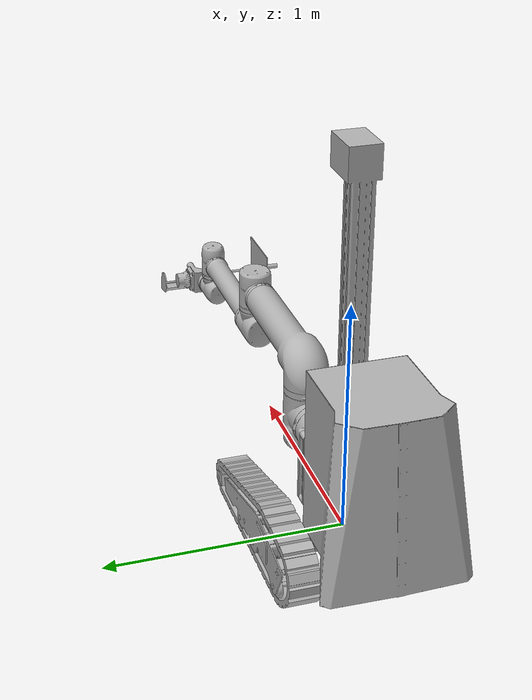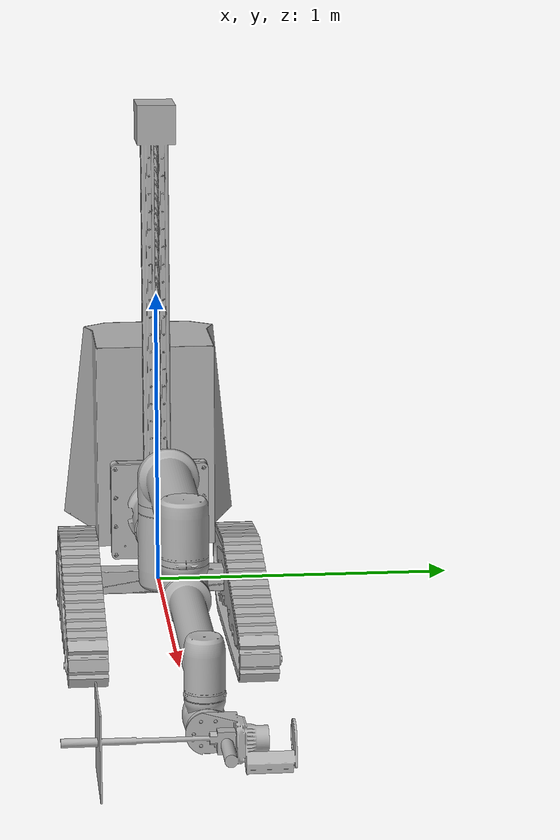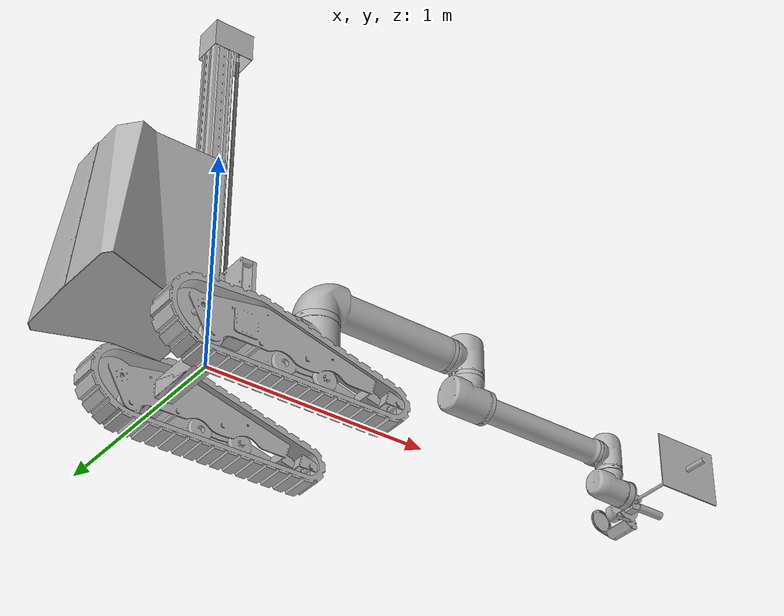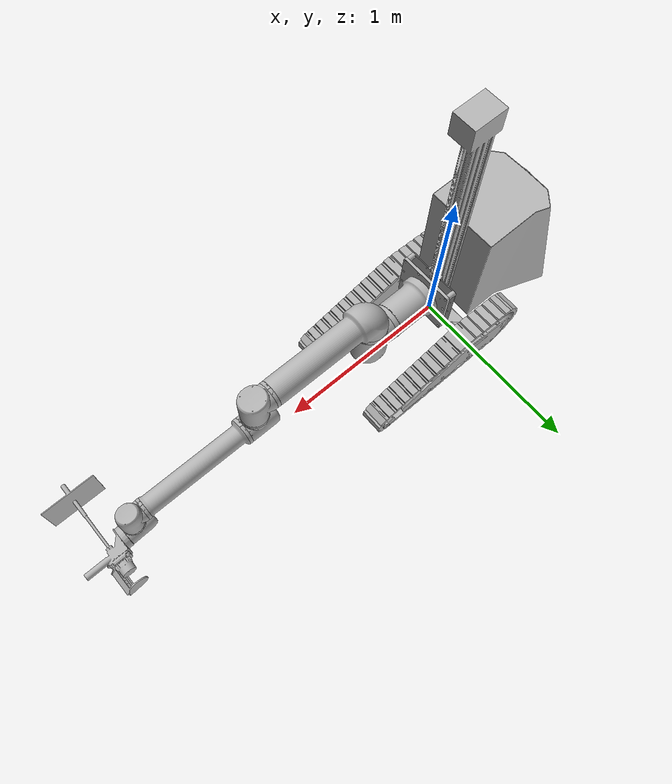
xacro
<?xml version="1.0"?>
<robot xmlns:xacro="http://www.ros.org/wiki/xacro" name="mobile_robco">
    <xacro:arg name="initial_positions_file" default="initial_positions.yaml" />

    <!-- Import mobile_robco urdf file -->
    <xacro:include filename="$(find mobile_robco_description)/urdf/mobile_robco.xacro" />

    <!-- Import control_xacro -->
    <xacro:include filename="mobile_robco.ros2_control.xacro" />

    <xacro:mobile_robco_ros2_control name="FakeSystem" initial_positions_file="$(arg initial_positions_file)"/>

</robot>

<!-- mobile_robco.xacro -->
<robot name="mobile_robco" xmlns:xacro="http://ros.org/wiki/xacro">

  <!-- Define Default Joint Limits -->
  <xacro:property name="default_lower" value="-4.71239"/>
  <xacro:property name="default_upper" value="4.71239"/>
  <xacro:property name="default_velocity" value="0.5"/>
  <xacro:property name="default_acceleration" value="0.05"/>

  <!-- Include Shared Xacro Files -->
  <xacro:include filename="$(find mobile_robco_description)/urdf/shared/materials.xacro" />
  <xacro:include filename="$(find mobile_robco_description)/urdf/shared/mobile_robco.trans" />
  <xacro:include filename="$(find mobile_robco_description)/urdf/shared/mobile_robco.gazebo" />

  <!-- Include Modular Components -->
  <xacro:include filename="$(find mobile_robco_description)/urdf/base/base.xacro" />
  <xacro:include filename="$(find mobile_robco_description)/urdf/arm/robco_xl.xacro" />
  <xacro:include filename="$(find mobile_robco_description)/urdf/end_effector/end_effector.xacro" />

  <!-- Include Plugins -->
  <xacro:include filename="$(find mobile_robco_description)/urdf/plugins/mobile_robco_track_plugin.gazebo" />
  <xacro:include filename="$(find mobile_robco_description)/urdf/plugins/mobile_robco.ros2_control.xacro" />

  <!-- Joint Connecting Basis and Arm -->
  <joint name="Rigid_19" type="fixed">
    <origin xyz="0.893568 -0.12648 0.409927" rpy="1.5708 0 0"/>
    <parent link="Komponente21_v1_1"/>
    <child link="BD193_customer_v1_1"/>
  </joint>

  <!-- Joint Connecting Arm and End Effector -->
  <joint name="robco_joint_5" type="revolute">
    <origin xyz="0.001757 0.060174 0.0748" rpy="0 0 0"/>
    <parent link="D116_customer_v1_2"/>
    <child link="lanze"/>
    <axis xyz="0 1 0"/>
    <limit lower="${default_lower}" upper="${default_upper}" effort="1000" velocity="${default_velocity}" acceleration="${default_acceleration}"/>
  </joint>

</robot>

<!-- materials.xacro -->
<robot name="mobile_robco" xmlns:xacro="http://www.ros.org/wiki/xacro" >

<material name="silver">
  <color rgba="0.700 0.700 0.700 1.000"/>
</material>

</robot>

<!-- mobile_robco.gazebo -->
<robot name="mobile_robco" xmlns:xacro="http://www.ros.org/wiki/xacro" >

<xacro:property name="body_color" value="Gazebo/Silver" />

<gazebo>
  <plugin filename="gz_ros2_control-system" name="gz_ros2_control::GazeboSimROS2ControlPlugin">
    <parameters>$(find mobile_robco_description)/config/controller_config.yaml</parameters>
  </plugin>
  <plugin filename="gz-sim-sensors-system" name="gz::sim::systems::Sensors">
    <render_engine>ogre2</render_engine>
  </plugin>
  <plugin name='rgl::RGLServerPluginManager' filename='RGLServerPluginManager'>
    <do_ignore_entities_in_lidar_link>true</do_ignore_entities_in_lidar_link>
  </plugin>
  <plugin filename="gz-sim-imu-system"
        name="gz::sim::systems::Imu">
  </plugin>
  <plugin filename="gz-sim-forcetorque-system" name="gz::sim::systems::ForceTorque">
  </plugin>
</gazebo>

<gazebo reference="base_link">
  <material>${body_color}</material>
  <mu1>0.2</mu1>
  <mu2>0.2</mu2>
  <self_collide>true</self_collide>
  <gravity>true</gravity>
</gazebo>

<gazebo reference="C193_v1_1">
  <material>${body_color}</material>
  <mu1>0.2</mu1>
  <mu2>0.2</mu2>
  <self_collide>true</self_collide>
</gazebo>

<gazebo reference="D193_customer_v1_1">
  <material>${body_color}</material>
  <mu1>0.2</mu1>
  <mu2>0.2</mu2>
  <self_collide>true</self_collide>
</gazebo>

<gazebo reference="C193_v1__1__1">
  <material>${body_color}</material>
  <mu1>0.2</mu1>
  <mu2>0.2</mu2>
  <self_collide>true</self_collide>
</gazebo>

<gazebo reference="L193_650_customer_v1_1">
  <material>${body_color}</material>
  <mu1>0.2</mu1>
  <mu2>0.2</mu2>
  <self_collide>true</self_collide>
</gazebo>

<gazebo reference="C148_v1__1__1">
  <material>${body_color}</material>
  <mu1>0.2</mu1>
  <mu2>0.2</mu2>
  <self_collide>true</self_collide>
</gazebo>

<gazebo reference="D148_customer_v3_1">
  <material>${body_color}</material>
  <mu1>0.2</mu1>
  <mu2>0.2</mu2>
  <self_collide>true</self_collide>
</gazebo>

<gazebo reference="C148_v1_1">
  <material>${body_color}</material>
  <mu1>0.2</mu1>
  <mu2>0.2</mu2>
  <self_collide>true</self_collide>
</gazebo>

<gazebo reference="D148_customer_v3__1__1">
  <material>${body_color}</material>
  <mu1>0.2</mu1>
  <mu2>0.2</mu2>
  <self_collide>true</self_collide>
</gazebo>

<gazebo reference="C148_v1__2__1">
  <material>${body_color}</material>
  <mu1>0.2</mu1>
  <mu2>0.2</mu2>
  <self_collide>true</self_collide>
</gazebo>

<gazebo reference="I148_600_customer_v1_1">
  <material>${body_color}</material>
  <mu1>0.2</mu1>
  <mu2>0.2</mu2>
  <self_collide>true</self_collide>
</gazebo>

<gazebo reference="C116_v1_1">
  <material>${body_color}</material>
  <mu1>0.2</mu1>
  <mu2>0.2</mu2>
  <self_collide>true</self_collide>
</gazebo>

<gazebo reference="D116_customer_v1_1">
  <material>${body_color}</material>
  <mu1>0.2</mu1>
  <mu2>0.2</mu2>
  <self_collide>true</self_collide>
</gazebo>

<gazebo reference="C116_v1__1__1">
  <material>${body_color}</material>
  <mu1>0.2</mu1>
  <mu2>0.2</mu2>
  <self_collide>true</self_collide>
</gazebo>

<gazebo reference="Komponente21_v1_1">
  <material>${body_color}</material>
  <mu1>0.2</mu1>
  <mu2>0.2</mu2>
  <self_collide>true</self_collide>
</gazebo>

<gazebo reference="BD193_customer_v1_1">
  <material>${body_color}</material>
  <mu1>0.2</mu1>
  <mu2>0.2</mu2>
  <self_collide>true</self_collide>
</gazebo>

<gazebo reference="D116_customer_v1_2">
  <material>${body_color}</material>
  <mu1>0.2</mu1>
  <mu2>0.2</mu2>
  <self_collide>true</self_collide>
</gazebo>

<gazebo reference="base1_1">
  <material>${body_color}</material>
  <mu1>0.2</mu1>
  <mu2>0.2</mu2>
  <self_collide>true</self_collide>
</gazebo>

<gazebo reference="base2_1">
  <material>${body_color}</material>
  <mu1>0.2</mu1>
  <mu2>0.2</mu2>
  <self_collide>true</self_collide>
</gazebo>

<gazebo reference="track1_2">
  <material>${body_color}</material>
  <mu1>0.2</mu1>
  <mu2>0.2</mu2>
  <self_collide>true</self_collide>
</gazebo>

<gazebo reference="track1_1">
  <material>${body_color}</material>
  <mu1>0.2</mu1>
  <mu2>0.2</mu2>
  <self_collide>true</self_collide>
</gazebo>

<gazebo reference="case_1">
  <material>${body_color}</material>
  <mu1>0.2</mu1>
  <mu2>0.2</mu2>
  <self_collide>true</self_collide>
</gazebo>

<gazebo reference="Komponente21_1">
  <material>${body_color}</material>
  <mu1>0.2</mu1>
  <mu2>0.2</mu2>
  <self_collide>true</self_collide>
</gazebo>

<gazebo reference="Komponente22_1">
  <material>${body_color}</material>
  <mu1>0.2</mu1>
  <mu2>0.2</mu2>
  <self_collide>true</self_collide>
</gazebo>

<gazebo reference="Komponente17_v1_1">
  <material>${body_color}</material>
  <mu1>0.2</mu1>
  <mu2>0.2</mu2>
  <self_collide>true</self_collide>
</gazebo>

<gazebo reference="D116_customer_v1_2">
  <material>${body_color}</material>
  <mu1>0.2</mu1>
  <mu2>0.2</mu2>
  <self_collide>true</self_collide>
</gazebo>

<gazebo reference="lidar_cover3_1">
  <material>${body_color}</material>
  <mu1>0.2</mu1>
  <mu2>0.2</mu2>
  <self_collide>true</self_collide>
</gazebo>

<gazebo reference="lidar_cover2_1">
  <material>${body_color}</material>
  <mu1>0.2</mu1>
  <mu2>0.2</mu2>
  <self_collide>true</self_collide>
</gazebo>

<gazebo reference="lidar_cover_1">
  <material>${body_color}</material>
  <mu1>0.2</mu1>
  <mu2>0.2</mu2>
  <self_collide>true</self_collide>
</gazebo>

<gazebo reference="shield_1">
  <material>${body_color}</material>
  <mu1>0.2</mu1>
  <mu2>0.2</mu2>
  <self_collide>true</self_collide>
</gazebo>

<gazebo reference="robco_joint_5">
  <sensor type="force_torque" name="ft_sensor">
    <!-- Configure sensor properties -->
    <update_rate>100</update_rate>
    <always_on>true</always_on>
    <visualize>true</visualize>
    <topic>~/ft_sensor</topic>
    <pose>0 0 0 0 0 0</pose>
    <gz_frame_id>shield_1</gz_frame_id>

    <!-- ForceTorque-specific settings -->
    <force_torque>
      <!-- Typically 'child' or 'parent'. This sets which frame is reported. -->
      <frame>parent</frame>
      <!-- Direction of measurement: 'child_to_parent' or 'parent_to_child' -->
      <measure_direction>child_to_parent</measure_direction>
    </force_torque>
  </sensor>
</gazebo>

<gazebo reference="nozzle_1">
  <material>${body_color}</material>
  <mu1>0.2</mu1>
  <mu2>0.2</mu2>
  <self_collide>true</self_collide>
</gazebo>

<gazebo reference="ouster_lidar_frame">
  <material>${body_color}</material>
  <mu1>0.2</mu1>
  <mu2>0.2</mu2>
  <self_collide>true</self_collide>
  <sensor name="RGLsensor" type="custom">
    <plugin filename="RGLServerPluginInstance" name="rgl::RGLServerPluginInstance">
      <range>
          <min>0</min>
          <max>100</max>
      </range>
      <update_rate>10</update_rate>a
      <update_on_paused_sim>false</update_on_paused_sim>
      <topic>sim_ouster/points</topic>
      <frame>ouster_lidar_frame</frame>
      <pattern_uniform>
        <horizontal>
            <samples>1024</samples>
            <min_angle>-3.14159</min_angle>
            <max_angle>3.14159</max_angle>
        </horizontal>
        <vertical>
            <samples>128</samples>
            <min_angle>-0.7853975</min_angle>
            <max_angle>0.7853975</max_angle>
        </vertical>
    </pattern_uniform>
    </plugin>
  </sensor>
  <sensor name="imu_sensor" type="imu">
      <always_on>1</always_on>
      <update_rate>500</update_rate>
      <visualize>true</visualize>
      <topic>imu</topic>
      <gz_frame_id>ouster_lidar_frame</gz_frame_id>
  </sensor>
  </gazebo>

  <gazebo reference="camera">
    <sensor name="camera_sensor" type="camera">
      <pose>0 0 0 1.5708 -1.5708 0</pose>
      <update_rate>30</update_rate>
      <camera>
        <horizontal_fov>1.5708</horizontal_fov>
        <image>
          <width>1920</width>
          <height>1080</height>
          <format>R8G8B8</format>
        </image>
        <clip>
          <near>0.1</near>
          <far>100</far>
        </clip>
      </camera>
      <gz_frame_id>camera</gz_frame_id>
      <!-- Attach the ROS2 plugin -->
      <plugin filename="ImageDisplay" name="Image Display">      <!-- Plugin parameters (adjust these as needed) -->
        <cameraName>camera_sensor</cameraName>
        <imageTopicName>image_raw</imageTopicName>
        <cameraInfoTopicName>camera_info</cameraInfoTopicName>
        <!-- (Optionally add additional parameters like frame rate or frame id) -->
      </plugin>
    </sensor>
  </gazebo>

</robot>

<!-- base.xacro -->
<robot name="mobile_robco" xmlns:xacro="http://www.ros.org/wiki/xacro" >
  <xacro:macro name="base" params="">
    <!-- Base Links -->
    <link name="base_link">
      <inertial>
        <origin xyz="-0.03896153432804354 0.005867631915463676 -0.010673279397023769" rpy="0 0 0"/>
        <mass value="0.29955790540385463"/>
        <inertia ixx="0.000104" iyy="8.5e-05" izz="0.000184" ixy="0.0" iyz="0.0" ixz="-0.0"/>
      </inertial>
      <visual>
        <origin xyz="0 0 0" rpy="0 0 0"/>
        <geometry>
          <mesh filename="package://mobile_robco_description/meshes/base/base_link.stl" scale="0.001 0.001 0.001"/>
        </geometry>
        <material name="silver"/>
      </visual>
      <collision>
        <origin xyz="0 0 0" rpy="0 0 0"/>
        <geometry>
          <mesh filename="package://mobile_robco_description/meshes/base/base_link.stl" scale="0.001 0.001 0.001"/>
        </geometry>
      </collision>
    </link>

    <link name="Komponente21_v1_1">
      <inertial>
        <origin xyz="0.8506922741874056 0.0236368074605828 0.2599444984707082" rpy="0 0 0"/>
        <mass value="7.457205844054386"/>
        <inertia ixx="0.13903" iyy="0.08284" izz="0.058701" ixy="5e-06" iyz="-0.0" ixz="-3e-06"/>
      </inertial>
      <visual>
        <origin xyz="0.812664 0.022536 -0.5244" rpy="0 0 0"/>
        <geometry>
          <mesh filename="package://mobile_robco_description/meshes/base/Komponente21_v1_1.stl" scale="0.001 0.001 0.001"/>
        </geometry>
        <material name="silver"/>
      </visual>
      <collision>
        <origin xyz="0.812664 0.022536 -0.5244" rpy="0 0 0"/>
        <geometry>
          <mesh filename="package://mobile_robco_description/meshes/base/Komponente21_v1_1.stl" scale="0.001 0.001 0.001"/>
        </geometry>
      </collision>
    </link>

    <link name="base1_1">
      <inertial>
        <origin xyz="0.9566914769760486 -3.233384710271179 -0.25954941172347595" rpy="0 0 0"/>
        <mass value="30.05835489201481"/>
        <inertia ixx="0.536547" iyy="2.250629" izz="2.586858" ixy="0.101195" iyz="-0.033579" ixz="0.196743"/>
      </inertial>
      <visual>
        <origin xyz="0.902805 -2.986735 -0.214327" rpy="0 0 0"/>
        <geometry>
          <mesh filename="package://mobile_robco_description/meshes/base/base1_1.stl" scale="0.001 0.001 0.001"/>
        </geometry>
        <material name="silver"/>
      </visual>
      <collision>
        <origin xyz="0.902805 -2.986735 -0.214327" rpy="0 0 0"/>
        <geometry>
          <mesh filename="package://mobile_robco_description/meshes/base/base1_1.stl" scale="0.001 0.001 0.001"/>
        </geometry>
      </collision>
    </link>

    <link name="base2_1">
      <inertial>
        <origin xyz="0.9515434769737495 0.9370499741022495 -0.19289541172296418" rpy="0 0 0"/>
        <mass value="30.058354892051064"/>
        <inertia ixx="0.536547" iyy="2.250629" izz="2.586858" ixy="-0.101195" iyz="0.033579" ixz="0.196743"/>
      </inertial>
      <visual>
        <origin xyz="0.897657 0.678665 -0.147673" rpy="0 0 0"/>
        <geometry>
          <mesh filename="package://mobile_robco_description/meshes/base/base2_1.stl" scale="0.001 0.001 0.001"/>
        </geometry>
        <material name="silver"/>
      </visual>
      <collision>
        <origin xyz="0.897657 0.678665 -0.147673" rpy="0 0 0"/>
        <geometry>
          <mesh filename="package://mobile_robco_description/meshes/base/base2_1.stl" scale="0.001 0.001 0.001"/>
        </geometry>
      </collision>
    </link>

    <link name="track1_2">
      <inertial>
        <origin xyz="0.3784911035024571 0.0001407824381797762 -0.036981829496462386" rpy="0 0 0"/>
        <mass value="64.38115755506752"/>
        <inertia ixx="0.932371" iyy="7.44887" izz="6.697061" ixy="-4e-06" iyz="3e-06" ixz="0.581153"/>
      </inertial>
      <visual>
        <origin xyz="0.224661 0.271632 0.004433" rpy="0 0 0"/>
        <geometry>
          <mesh filename="package://mobile_robco_description/meshes/base/track1_2.stl" scale="0.001 0.001 0.001"/>
        </geometry>
        <material name="silver"/>
      </visual>
      <collision>
        <origin xyz="0.224661 0.271632 0.004433" rpy="0 0 0"/>
        <geometry>
          <mesh filename="package://mobile_robco_description/meshes/base/track1_2.stl" scale="0.001 0.001 0.001"/>
        </geometry>
      </collision>
    </link>

    <link name="track1_1">
      <inertial>
        <origin xyz="0.3784911035024567 0.0001407824381787215 -0.03698182949646118" rpy="0 0 0"/>
        <mass value="64.38115755506752"/>
        <inertia ixx="0.932371" iyy="7.44887" izz="6.697061" ixy="-4e-06" iyz="3e-06" ixz="0.581153"/>
      </inertial>
      <visual>
        <origin xyz="0.224661 -0.283368 0.004433" rpy="0 0 0"/>
        <geometry>
          <mesh filename="package://mobile_robco_description/meshes/base/track1_1.stl" scale="0.001 0.001 0.001"/>
        </geometry>
        <material name="silver"/>
      </visual>
      <collision>
        <origin xyz="0.224661 -0.283368 0.004433" rpy="0 0 0"/>
        <geometry>
          <mesh filename="package://mobile_robco_description/meshes/base/track1_1.stl" scale="0.001 0.001 0.001"/>
        </geometry>
      </collision>
    </link>

    <link name="case_1">
      <inertial>
        <origin xyz="0.5981603934625015 -0.27455392719381355 0.27391391694938416" rpy="0 0 0"/>
        <mass value="21.33788447267496"/>
        <inertia ixx="1.560533" iyy="1.705148" izz="1.529387" ixy="-0.000105" iyz="-5e-05" ixz="-0.077952"/>
      </inertial>
      <visual>
        <origin xyz="0.937657 -0.2754 -0.164327" rpy="0 0 0"/>
        <geometry>
          <mesh filename="package://mobile_robco_description/meshes/base/case_1.stl" scale="0.001 0.001 0.001"/>
        </geometry>
        <material name="silver"/>
      </visual>
      <collision>
        <origin xyz="0.937657 -0.2754 -0.164327" rpy="0 0 0"/>
        <geometry>
          <mesh filename="package://mobile_robco_description/meshes/base/case_1.stl" scale="0.001 0.001 0.001"/>
        </geometry>
      </collision>
    </link>

    <link name="Komponente21_1">
      <inertial>
        <origin xyz="-0.281767606460638 -3.6808453582673744e-07 0.0024997206029748753" rpy="0 0 0"/>
        <mass value="9.491285426405621"/>
        <inertia ixx="0.181579" iyy="0.218291" izz="0.39983" ixy="0.0" iyz="0.0" ixz="-0.0"/>
      </inertial>
      <visual>
        <origin xyz="0.084996 -0.000868 -0.099327" rpy="0 0 0"/>
        <geometry>
          <mesh filename="package://mobile_robco_description/meshes/base/Komponente21_1.stl" scale="0.001 0.001 0.001"/>
        </geometry>
        <material name="silver"/>
      </visual>
      <collision>
        <origin xyz="0.084996 -0.000868 -0.099327" rpy="0 0 0"/>
        <geometry>
          <mesh filename="package://mobile_robco_description/meshes/base/Komponente21_1.stl" scale="0.001 0.001 0.001"/>
        </geometry>
      </collision>
    </link>

    <link name="Komponente22_1">
      <inertial>
        <origin xyz="-0.22332399262019292 -3.680845353294139e-07 -0.0010002793970341761" rpy="0 0 0"/>
        <mass value="2.8182596840169714"/>
        <inertia ixx="0.037978" iyy="0.046329" izz="0.084305" ixy="0.0" iyz="0.0" ixz="-0.0"/>
      </inertial>
      <visual>
        <origin xyz="0.084996 -0.000868 -0.799327" rpy="0 0 0"/>
        <geometry>
          <mesh filename="package://mobile_robco_description/meshes/base/Komponente22_1.stl" scale="0.001 0.001 0.001"/>
        </geometry>
        <material name="silver"/>
      </visual>
      <collision>
        <origin xyz="0.084996 -0.000868 -0.799327" rpy="0 0 0"/>
        <geometry>
          <mesh filename="package://mobile_robco_description/meshes/base/Komponente22_1.stl" scale="0.001 0.001 0.001"/>
        </geometry>
      </collision>
    </link>

    <link name="Komponente17_v1_1">
      <inertial>
        <origin xyz="0.5102378890855793 0.5891907409325978 0.7543644472014741" rpy="0 0 0"/>
        <mass value="38.85023583912367"/>
        <inertia ixx="8.389143" iyy="8.421741" izz="0.097879" ixy="-0.000112" iyz="-8.3e-05" ixz="-0.001163"/>
      </inertial>
      <visual>
        <origin xyz="0.532323 0.588265 -0.063802" rpy="0 0 0"/>
        <geometry>
          <mesh filename="package://mobile_robco_description/meshes/base/Komponente17_v1_1.stl" scale="0.001 0.001 0.001"/>
        </geometry>
        <material name="silver"/>
      </visual>
      <collision>
        <origin xyz="0.532323 0.588265 -0.063802" rpy="0 0 0"/>
        <geometry>
          <mesh filename="package://mobile_robco_description/meshes/base/Komponente17_v1_1.stl" scale="0.001 0.001 0.001"/>
        </geometry>
      </collision>
    </link>

    <!-- Base Joints -->

    <joint name="Slider_18" type="prismatic">
      <origin xyz="-0.280341 0.565729 -0.056902" rpy="0 0 0"/>
      <parent link="Komponente17_v1_1"/>
      <child link="Komponente21_v1_1"/>
      <axis xyz="0.0 0.0 1.0"/> <!-- Adjust the direction as needed -->
      <limit lower="0.0" upper="1.0" effort="10000" velocity="0.5"/>
    </joint>

    <joint name="Rigid_30" type="fixed">
      <origin xyz="-0.902805 2.986735 0.214327" rpy="0 0 0"/>
      <parent link="base_link"/>
      <child link="base1_1"/>
    </joint>

    <joint name="Rigid_31" type="fixed">
      <origin xyz="0.005148 -3.6654 -0.066654" rpy="0 0 0"/>
      <parent link="base1_1"/>
      <child link="base2_1"/>
    </joint>

    <joint name="Rigid_32" type="fixed">
      <origin xyz="0.678144 -3.258367 -0.21876" rpy="0 0 0"/>
      <parent link="base1_1"/>
      <child link="track1_2"/>
    </joint>

    <joint name="Rigid_33" type="fixed">
      <origin xyz="0.672996 0.962033 -0.152106" rpy="0 0 0"/>
      <parent link="base2_1"/>
      <child link="track1_1"/>
    </joint>

    <joint name="Rigid_34" type="fixed">
      <origin xyz="-0.04 0.954065 0.016654" rpy="0 0 0"/>
      <parent link="base2_1"/>
      <child link="case_1"/>
    </joint>

    <joint name="Rigid_35" type="fixed">
      <origin xyz="0.852661 -0.274532 -0.065" rpy="0 0 0"/>
      <parent link="case_1"/>
      <child link="Komponente21_1"/>
    </joint>

    <joint name="Rigid_36" type="fixed">
      <origin xyz="0.852661 -0.274532 0.635" rpy="0 0 0"/>
      <parent link="case_1"/>
      <child link="Komponente22_1"/>
    </joint>

    <joint name="Rigid_37" type="fixed">
      <origin xyz="0.405334 -0.863665 -0.100525" rpy="0 0 0"/>
      <parent link="case_1"/>
      <child link="Komponente17_v1_1"/>
    </joint>

  </xacro:macro>

  <!-- Invoke the Base Macro -->
  <xacro:base/>
</robot>

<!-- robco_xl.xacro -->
<robot name="mobile_robco" xmlns:xacro="http://www.ros.org/wiki/xacro" >
  <xacro:macro name="robco_xl" params="">

    <!-- Arm Links -->
    <link name="BD193_customer_v1_1">
      <inertial>
        <origin xyz="0.11086093890617746 -0.14999883865839964 -0.15049475459763317" rpy="0 0 0"/>
        <mass value="0.01"/>
        <inertia ixx="0.568297" iyy="0.80608" izz="0.810001" ixy="9e-06" iyz="-9.1e-05" ixz="-0.00257"/>
      </inertial>
      <visual>
        <origin xyz="-0.080904 -0.151068 -0.934327" rpy="0 0 0"/>
        <geometry>
          <mesh filename="package://mobile_robco_description/meshes/arm/BD193_customer_v1_1.stl" scale="0.001 0.001 0.001"/>
        </geometry>
        <material name="silver"/>
      </visual>
      <collision>
        <origin xyz="-0.080904 -0.151068 -0.934327" rpy="0 0 0"/>
        <geometry>
          <mesh filename="package://mobile_robco_description/meshes/arm/BD193_customer_v1_1.stl" scale="0.001 0.001 0.001"/>
        </geometry>
      </collision>
    </link>

    <link name="C193_v1_1">
      <inertial>
        <origin xyz="0.015200084341211284 -3.680834741773796e-07 -2.793969402503649e-07" rpy="0 0 0"/>
        <mass value="0.01"/>
        <inertia ixx="0.020057" iyy="0.010324" izz="0.010197" ixy="0.0" iyz="-5.4e-05" ixz="0.0"/>
      </inertial>
      <visual>
        <origin xyz="-0.337184 -0.001068 -0.784327" rpy="0 0 0"/>
        <geometry>
          <mesh filename="package://mobile_robco_description/meshes/arm/C193_v1_1.stl" scale="0.001 0.001 0.001"/>
        </geometry>
        <material name="silver"/>
      </visual>
      <collision>
        <origin xyz="-0.337184 -0.001068 -0.784327" rpy="0 0 0"/>
        <geometry>
          <mesh filename="package://mobile_robco_description/meshes/arm/C193_v1_1.stl" scale="0.001 0.001 0.001"/>
        </geometry>
      </collision>
    </link>

    <link name="D193_customer_v1_1">
      <inertial>
        <origin xyz="0.10298077716574155 -2.428876458104943e-07 0.015448294912491889" rpy="0 0 0"/>
        <mass value="0.01"/>
        <inertia ixx="0.539442" iyy="0.611028" izz="0.407083" ixy="2e-06" iyz="-8e-06" ixz="-0.005581"/>
      </inertial>
      <visual>
        <origin xyz="-0.367584 -0.001068 -0.784327" rpy="0 0 0"/>
        <geometry>
          <mesh filename="package://mobile_robco_description/meshes/arm/D193_customer_v1_1.stl" scale="0.001 0.001 0.001"/>
        </geometry>
        <material name="silver"/>
      </visual>
      <collision>
        <origin xyz="-0.367584 -0.001068 -0.784327" rpy="0 0 0"/>
        <geometry>
          <mesh filename="package://mobile_robco_description/meshes/arm/D193_customer_v1_1.stl" scale="0.001 0.001 0.001"/>
        </geometry>
      </collision>
    </link>

    <link name="C193_v1__1__1">
      <inertial>
        <origin xyz="-4.3628065271583694e-08 -3.6808345936999685e-07 -0.01520015142763309" rpy="0 0 0"/>
        <mass value="0.01"/>
        <inertia ixx="0.010197" iyy="0.010324" izz="0.020057" ixy="5.4e-05" iyz="0.0" ixz="-0.0"/>
      </inertial>
      <visual>
        <origin xyz="-0.487084 -0.001068 -0.681727" rpy="0 0 0"/>
        <geometry>
          <mesh filename="package://mobile_robco_description/meshes/arm/C193_v1__1__1.stl" scale="0.001 0.001 0.001"/>
        </geometry>
        <material name="silver"/>
      </visual>
      <collision>
        <origin xyz="-0.487084 -0.001068 -0.681727" rpy="0 0 0"/>
        <geometry>
          <mesh filename="package://mobile_robco_description/meshes/arm/C193_v1__1__1.stl" scale="0.001 0.001 0.001"/>
        </geometry>
      </collision>
    </link>

    <link name="L193_650_customer_v1_1">
      <inertial>
        <origin xyz="-1.6859656837286963e-08 0.2244674829954521 -0.08982077771376107" rpy="0 0 0"/>
        <mass value="0.01"/>
        <inertia ixx="3.380256" iyy="0.250245" izz="3.345006" ixy="-1e-06" iyz="0.136792" ixz="0.0"/>
      </inertial>
      <visual>
        <origin xyz="-0.487084 -0.001068 -0.651327" rpy="0 0 0"/>
        <geometry>
          <mesh filename="package://mobile_robco_description/meshes/arm/L193_650_customer_v1_1.stl" scale="0.001 0.001 0.001"/>
        </geometry>
        <material name="silver"/>
      </visual>
      <collision>
        <origin xyz="-0.487084 -0.001068 -0.651327" rpy="0 0 0"/>
        <geometry>
          <mesh filename="package://mobile_robco_description/meshes/arm/L193_650_customer_v1_1.stl" scale="0.001 0.001 0.001"/>
        </geometry>
      </collision>
    </link>

    <link name="C148_v1__1__1">
      <inertial>
        <origin xyz="-4.362867545015803e-08 0.010000445052072982 -2.793975094617096e-07" rpy="0 0 0"/>
        <mass value="0.01"/>
        <inertia ixx="0.002085" iyy="0.004128" izz="0.002114" ixy="-0.0" iyz="-0.0" ixz="1.8e-05"/>
      </inertial>
      <visual>
        <origin xyz="-0.487084 -0.640067 -0.551827" rpy="0 0 0"/>
        <geometry>
          <mesh filename="package://mobile_robco_description/meshes/arm/C148_v1__1__1.stl" scale="0.001 0.001 0.001"/>
        </geometry>
        <material name="silver"/>
      </visual>
      <collision>
        <origin xyz="-0.487084 -0.640067 -0.551827" rpy="0 0 0"/>
        <geometry>
          <mesh filename="package://mobile_robco_description/meshes/arm/C148_v1__1__1.stl" scale="0.001 0.001 0.001"/>
        </geometry>
      </collision>
    </link>

    <link name="D148_customer_v3_1">
      <inertial>
        <origin xyz="-1.3077764832170047e-07 0.08184841458206737 -0.00905243278253931" rpy="0 0 0"/>
        <mass value="0.01"/>
        <inertia ixx="0.12833" iyy="0.11191" izz="0.09299" ixy="0.0" iyz="0.000106" ixz="-0.0"/>
      </inertial>
      <visual>
        <origin xyz="-0.487084 -0.660067 -0.551827" rpy="0 0 0"/>
        <geometry>
          <mesh filename="package://mobile_robco_description/meshes/arm/D148_customer_v3_1.stl" scale="0.001 0.001 0.001"/>
        </geometry>
        <material name="silver"/>
      </visual>
      <collision>
        <origin xyz="-0.487084 -0.660067 -0.551827" rpy="0 0 0"/>
        <geometry>
          <mesh filename="package://mobile_robco_description/meshes/arm/D148_customer_v3_1.stl" scale="0.001 0.001 0.001"/>
        </geometry>
      </collision>
    </link>

    <link name="C148_v1_1">
      <inertial>
        <origin xyz="-4.3628775647786e-08 -3.8908754351751895e-07 0.009999753129409816" rpy="0 0 0"/>
        <mass value="0.01"/>
        <inertia ixx="0.002085" iyy="0.002114" izz="0.004128" ixy="1.8e-05" iyz="0.0" ixz="0.0"/>
      </inertial>
      <visual>
        <origin xyz="-0.487084 -0.753066 -0.625817" rpy="0 0 0"/>
        <geometry>
          <mesh filename="package://mobile_robco_description/meshes/arm/C148_v1_1.stl" scale="0.001 0.001 0.001"/>
        </geometry>
        <material name="silver"/>
      </visual>
      <collision>
        <origin xyz="-0.487084 -0.753066 -0.625817" rpy="0 0 0"/>
        <geometry>
          <mesh filename="package://mobile_robco_description/meshes/arm/C148_v1_1.stl" scale="0.001 0.001 0.001"/>
        </geometry>
      </collision>
    </link>

    <link name="D148_customer_v3__1__1">
      <inertial>
        <origin xyz="-0.00905219701372556 -4.76236378221806e-07 0.08184765760542778" rpy="0 0 0"/>
        <mass value="0.01"/>
        <inertia ixx="0.09299" iyy="0.12833" izz="0.11191" ixy="-0.0" iyz="0.0" ixz="0.000106"/>
      </inertial>
      <visual>
        <origin xyz="-0.487084 -0.753066 -0.645817" rpy="0 0 0"/>
        <geometry>
          <mesh filename="package://mobile_robco_description/meshes/arm/D148_customer_v3__1__1.stl" scale="0.001 0.001 0.001"/>
        </geometry>
        <material name="silver"/>
      </visual>
      <collision>
        <origin xyz="-0.487084 -0.753066 -0.645817" rpy="0 0 0"/>
        <geometry>
          <mesh filename="package://mobile_robco_description/meshes/arm/D148_customer_v3__1__1.stl" scale="0.001 0.001 0.001"/>
        </geometry>
      </collision>
    </link>

    <link name="C148_v1__2__1">
      <inertial>
        <origin xyz="0.009999923844242087 -3.890873916390092e-07 -1.4606422626961546e-07" rpy="0 0 0"/>
        <mass value="0.01"/>
        <inertia ixx="0.004128" iyy="0.002085" izz="0.002114" ixy="0.0" iyz="-1.8e-05" ixz="0.0"/>
      </inertial>
      <visual>
        <origin xyz="-0.561074 -0.753066 -0.738815" rpy="0 0 0"/>
        <geometry>
          <mesh filename="package://mobile_robco_description/meshes/arm/C148_v1__2__1.stl" scale="0.001 0.001 0.001"/>
        </geometry>
        <material name="silver"/>
      </visual>
      <collision>
        <origin xyz="-0.561074 -0.753066 -0.738815" rpy="0 0 0"/>
        <geometry>
          <mesh filename="package://mobile_robco_description/meshes/arm/C148_v1__2__1.stl" scale="0.001 0.001 0.001"/>
        </geometry>
      </collision>
    </link>

    <link name="I148-600_customer_v1_1">
      <inertial>
        <origin xyz="0.26278201696322756 -5.503622635405492e-07 -9.307806403402452e-08" rpy="0 0 0"/>
        <mass value="0.01"/>
        <inertia ixx="0.0292" iyy="0.931257" izz="0.931257" ixy="-1e-06" iyz="-0.0" ixz="0.0"/>
      </inertial>
      <visual>
        <origin xyz="-0.581074 -0.753066 -0.738815" rpy="0 0 0"/>
        <geometry>
          <mesh filename="package://mobile_robco_description/meshes/arm/I148_600_customer_v1_1.stl" scale="0.001 0.001 0.001"/>
        </geometry>
        <material name="silver"/>
      </visual>
      <collision>
        <origin xyz="-0.581074 -0.753066 -0.738815" rpy="0 0 0"/>
        <geometry>
          <mesh filename="package://mobile_robco_description/meshes/arm/I148_600_customer_v1_1.stl" scale="0.001 0.001 0.001"/>
        </geometry>
      </collision>
    </link>

    <link name="C116_v1_1">
      <inertial>
        <origin xyz="0.008999964542216965 -3.890870051703743e-07 -1.4606425124963351e-07" rpy="0 0 0"/>
        <mass value="0.01"/>
        <inertia ixx="0.001452" iyy="0.000725" izz="0.000758" ixy="-0.0" iyz="-8e-06" ixz="-0.0"/>
      </inertial>
      <visual>
        <origin xyz="-1.160574 -0.753066 -0.738815" rpy="0 0 0"/>
        <geometry>
          <mesh filename="package://mobile_robco_description/meshes/arm/C116_v1_1.stl" scale="0.001 0.001 0.001"/>
        </geometry>
        <material name="silver"/>
      </visual>
      <collision>
        <origin xyz="-1.160574 -0.753066 -0.738815" rpy="0 0 0"/>
        <geometry>
          <mesh filename="package://mobile_robco_description/meshes/arm/C116_v1_1.stl" scale="0.001 0.001 0.001"/>
        </geometry>
      </collision>
    </link>

    <link name="D116_customer_v1_1">
      <inertial>
        <origin xyz="0.06352197108840985 -3.933336560901779e-07 -0.012655163639839428" rpy="0 0 0"/>
        <mass value="0.01"/>
        <inertia ixx="0.043278" iyy="0.048321" izz="0.029984" ixy="-0.0" iyz="-0.0" ixz="-5e-05"/>
      </inertial>
      <visual>
        <origin xyz="-1.178574 -0.753066 -0.738815" rpy="0 0 0"/>
        <geometry>
          <mesh filename="package://mobile_robco_description/meshes/arm/D116_customer_v1_1.stl" scale="0.001 0.001 0.001"/>
        </geometry>
        <material name="silver"/>
      </visual>
      <collision>
        <origin xyz="-1.178574 -0.753066 -0.738815" rpy="0 0 0"/>
        <geometry>
          <mesh filename="package://mobile_robco_description/meshes/arm/D116_customer_v1_1.stl" scale="0.001 0.001 0.001"/>
        </geometry>
      </collision>
    </link>

    <link name="C116_v1__1__1">
      <inertial>
        <origin xyz="-4.362886030229163e-08 -3.890868733869013e-07 0.008999845764856462" rpy="0 0 0"/>
        <mass value="0.01"/>
        <inertia ixx="0.000758" iyy="0.000725" izz="0.001452" ixy="-8e-06" iyz="0.0" ixz="0.0"/>
      </inertial>
      <visual>
        <origin xyz="-1.250574 -0.753066 -0.799015" rpy="0 0 0"/>
        <geometry>
          <mesh filename="package://mobile_robco_description/meshes/arm/C116_v1__1__1.stl" scale="0.001 0.001 0.001"/>
        </geometry>
        <material name="silver"/>
      </visual>
      <collision>
        <origin xyz="-1.250574 -0.753066 -0.799015" rpy="0 0 0"/>
        <geometry>
          <mesh filename="package://mobile_robco_description/meshes/arm/C116_v1__1__1.stl" scale="0.001 0.001 0.001"/>
        </geometry>
      </collision>
    </link>

    <link name="D116_customer_v1_2">
      <inertial>
        <origin xyz="-0.00045617739445845016 -0.015625352365130993 0.06600157891356076" rpy="0 0 0"/>
        <mass value="0.01"/>
        <inertia ixx="0.044431" iyy="0.029421" izz="0.03944" ixy="-0.000438" iyz="0.000334" ixz="1.3e-05"/>
      </inertial>
      <visual>
        <origin xyz="0 0 0" rpy="0 0 0"/>
        <geometry>
          <mesh filename="package://mobile_robco_description/meshes/arm/base_link.stl" scale="0.001 0.001 0.001"/>
        </geometry>
        <material name="silver"/>
      </visual>
      <collision>
        <origin xyz="0 0 0" rpy="0 0 0"/>
        <geometry>
          <mesh filename="package://mobile_robco_description/meshes/arm/base_link.stl" scale="0.001 0.001 0.001"/>
        </geometry>
      </collision>
    </link>

    <!-- Joints -->
    <joint name="Rigid_5" type="fixed">
      <origin xyz="0.25628 -0.15 -0.15" rpy="0 0 0"/>
      <parent link="BD193_customer_v1_1"/>
      <child link="C193_v1_1"/>
    </joint>

    <joint name="robco_joint_0" type="revolute">
      <origin xyz="0.0304 0.0 0.0" rpy="1.57 0 0"/>
      <parent link="C193_v1_1"/>
      <child link="D193_customer_v1_1"/>
      <axis xyz="1.0 0.0 0.0"/>
      <limit lower="${default_lower}" upper="${default_upper}" effort="1000" velocity="${default_velocity}" acceleration="${default_acceleration}"/>
    </joint>

    <joint name="Rigid_7" type="fixed">
      <origin xyz="0.1195 0.0 -0.1026" rpy="0 0 0"/>
      <parent link="D193_customer_v1_1"/>
      <child link="C193_v1__1__1"/>
    </joint>

    <joint name="robco_joint_1" type="revolute">
      <origin xyz="0.0 0.0 -0.0304" rpy="0 0 -1.5708"/>
      <parent link="C193_v1__1__1"/>
      <child link="L193_650_customer_v1_1"/>
      <axis xyz="0.0 -0.0 -1.0"/>
      <limit lower="${default_lower}" upper="${default_upper}" effort="1000" velocity="${default_velocity}" acceleration="${default_acceleration}"/>
    </joint>

    <joint name="Rigid_9" type="fixed">
      <origin xyz="0.0 0.638999 -0.0995" rpy="0 0 0"/>
      <parent link="L193_650_customer_v1_1"/>
      <child link="C148_v1__1__1"/>
    </joint>

    <joint name="Rigid_10" type="fixed">
      <origin xyz="0.0 0.02 0.0" rpy="0 0 0"/>
      <parent link="C148_v1__1__1"/>
      <child link="D148_customer_v3_1"/>
      <axis xyz="-0.0 1.0 -0.0"/>
    </joint>

    <joint name="Rigid_11" type="fixed">
      <origin xyz="0.0 0.092999 0.07399" rpy="0 0 0"/>
      <parent link="D148_customer_v3_1"/>
      <child link="C148_v1_1"/>
    </joint>

    <joint name="robco_joint_2" type="revolute">
      <origin xyz="0.0 0.0 0.02" rpy="0 0 1.5708"/>
      <parent link="C148_v1_1"/>
      <child link="D148_customer_v3__1__1"/>
      <axis xyz="-0.0 0.0 1.0"/>
      <limit lower="${default_lower}" upper="${default_upper}" effort="1000" velocity="${default_velocity}" acceleration="${default_acceleration}"/>
    </joint>

    <joint name="Rigid_13" type="fixed">
      <origin xyz="0.07399 0.0 0.092998" rpy="0 0 0"/>
      <parent link="D148_customer_v3__1__1"/>
      <child link="C148_v1__2__1"/>
    </joint>

    <joint name="robco_joint_3" type="revolute">
      <origin xyz="0.02 0.0 0.0" rpy="0 0 0"/>
      <parent link="C148_v1__2__1"/>
      <child link="I148-600_customer_v1_1"/>
      <axis xyz="1.0 0.0 0.0"/>
      <limit lower="${default_lower}" upper="${default_upper}" effort="1000" velocity="${default_velocity}" acceleration="${default_acceleration}"/>
    </joint>

    <joint name="Rigid_15" type="fixed">
      <origin xyz="0.5795 0.0 0.0" rpy="0 0 0"/>
      <parent link="I148-600_customer_v1_1"/>
      <child link="C116_v1_1"/>
    </joint>

    <joint name="Rigid_16" type="fixed">
      <origin xyz="0.018 0.0 0.0" rpy="0 0 0"/>
      <parent link="C116_v1_1"/>
      <child link="D116_customer_v1_1"/>
    </joint>

    <joint name="robco_joint_4" type="revolute">
      <origin xyz="0.072 0.0 0.0602" rpy="0 0 1.5708"/>
      <parent link="D116_customer_v1_1"/>
      <child link="C116_v1__1__1"/>
      <axis xyz="-0.0 0.0 1.0"/>
      <limit lower="${default_lower}" upper="${default_upper}" effort="1000" velocity="${default_velocity}" acceleration="${default_acceleration}"/>
    </joint>

    <joint name="Rigid_20" type="fixed">
      <origin xyz="0.0 0.0 0.018" rpy="0 0 3.14159265359"/>
      <parent link="C116_v1__1__1"/>
      <child link="D116_customer_v1_2"/>
    </joint>

  </xacro:macro>

  <!-- Invoke the Arm Macro -->
  <xacro:robco_xl/>
</robot>

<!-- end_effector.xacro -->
<robot name="Komponente219" xmlns:xacro="http://www.ros.org/wiki/xacro">
  <xacro:macro name="end_effector" params="">
    <link name="lanze">
      <inertial>
        <origin xyz="0.0 0.0 0.0" rpy="0 0 0"/>
        <mass value="0.7246394223310322"/>
        <inertia ixx="0.001157" iyy="0.001395" izz="0.000899" ixy="7e-06" iyz="-0.000147" ixz="-4e-06"/>
      </inertial>
      <visual>
        <origin xyz="0.010351 0.265582  -0.184381" rpy="1.5708 0 0"/>
        <geometry>
          <mesh filename="package://mobile_robco_description/meshes/end_effector/lanze.stl" scale="0.001 0.001 0.001"/>
        </geometry>
        <material name="silver"/>
      </visual>
      <visual>
        <origin xyz="0 0.015 0" rpy="1.5708 0 0"/>
        <geometry>
          <cylinder radius="0.06" length="0.03"/>
        </geometry>
        <material name="silver"/>
      </visual>
      <collision>
        <origin xyz="0.010351 0.265582  -0.184381" rpy="1.5708 0 0"/>
        <geometry>
          <mesh filename="package://mobile_robco_description/meshes/end_effector/lanze.stl" scale="0.001 0.001 0.001"/>
        </geometry>
      </collision>
      <collision>
        <origin xyz="0 0.015 0" rpy="1.5708 0 0"/>
        <geometry>
          <cylinder radius="0.06" length="0.03"/>
        </geometry>
      </collision>
    </link>

    <!-- Tool0 frame (essential for end effector kinematics) -->
    <link name="tool0">
    </link>

    <joint name="lanze-tool0" type="fixed">
      <origin xyz="-0.4767 0.1006 -0.0094" rpy="0 -1.5708 0"/>
      <parent link="lanze"/>
      <child link="tool0"/>
    </joint>

  </xacro:macro>
  <!-- Invoke the End Effector Macro -->
  <xacro:end_effector/>
</robot>
